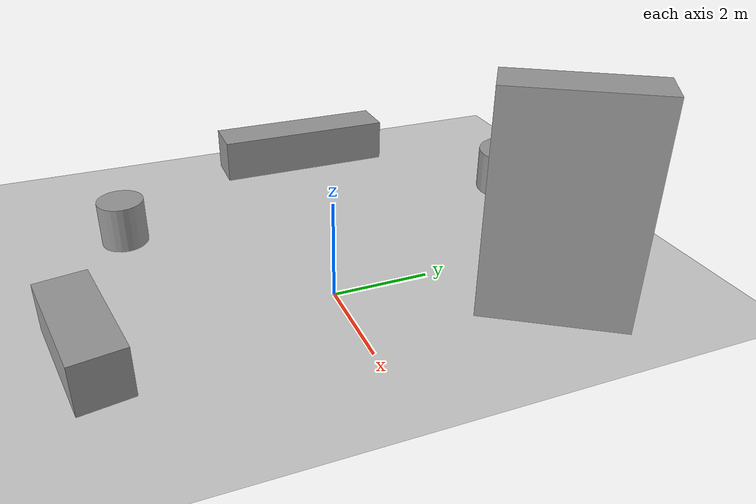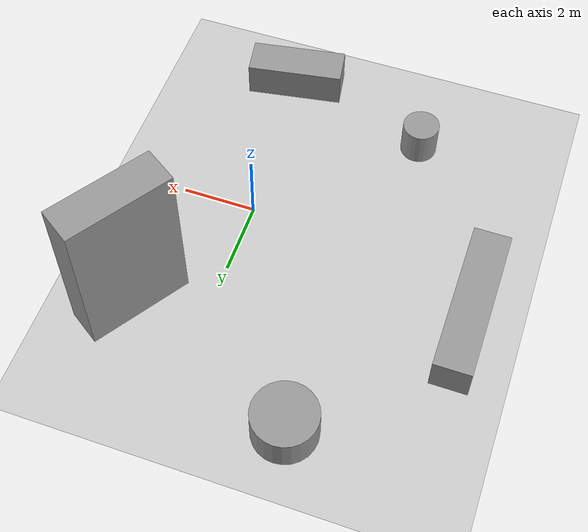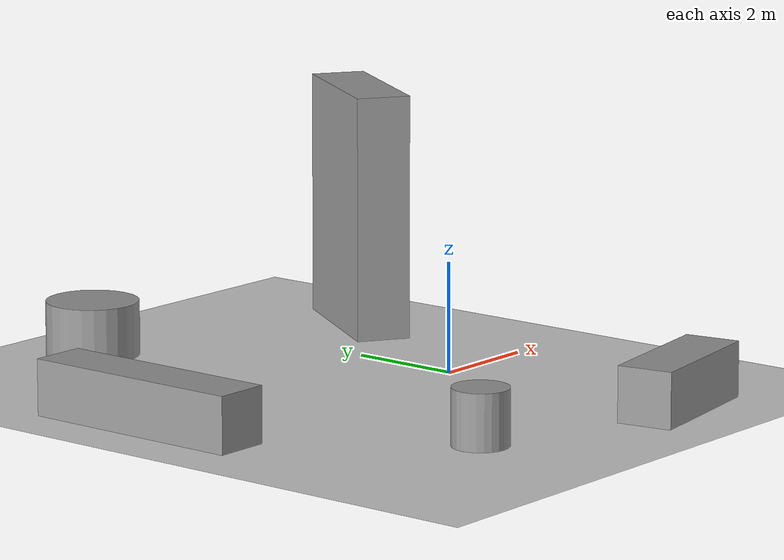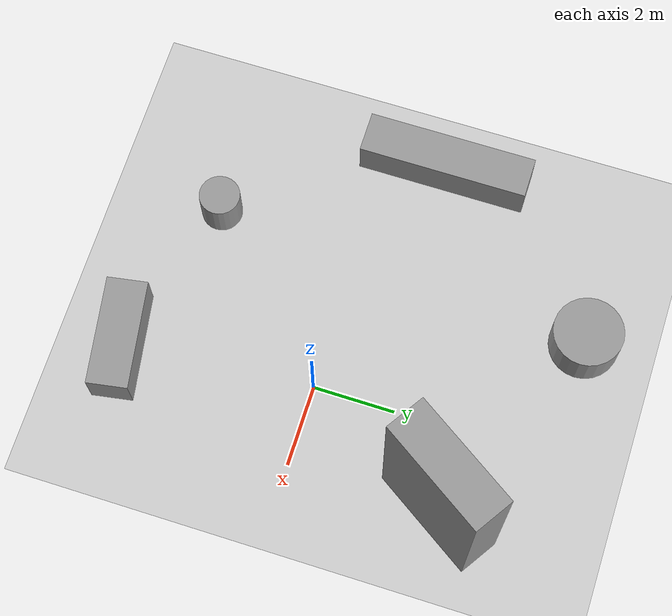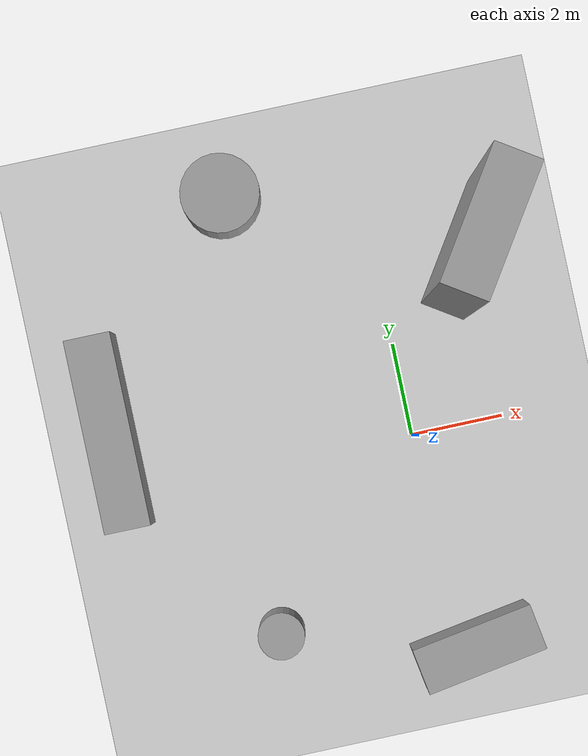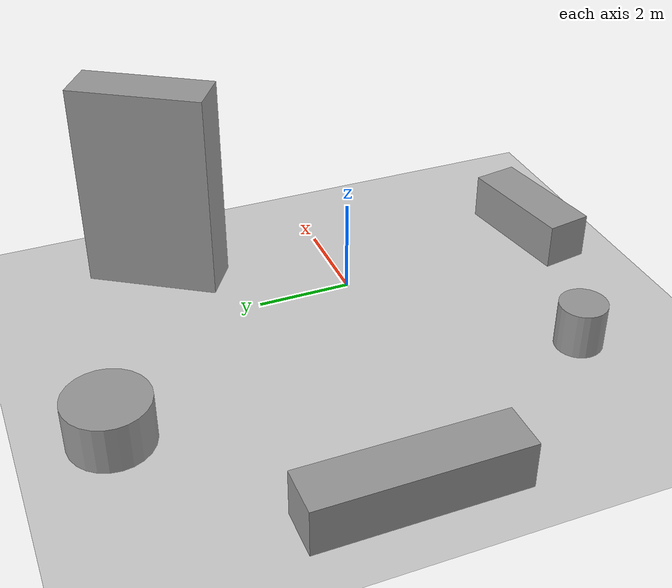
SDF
<sdf version="1.6">
 <world name="default">
  <light name="sun" type="directional">
   <pose>0 0 10 0 -0 0</pose>
   <diffuse>0.8 0.8 0.8 1</diffuse>
   <specular>0.1 0.1 0.1 1</specular>
   <attenuation>
    <range>1000</range>
    <constant>0.9</constant>
    <linear>0.01</linear>
    <quadratic>0.001</quadratic>
   </attenuation>
   <direction>-0.5 0.5 -1</direction>
  </light>
  <model name="ground_plane">
   <static>1</static>
   <link name="link">
    <collision name="collision">
     <geometry><plane><normal>0 0 1</normal><size>100 100</size></plane></geometry>
     <surface><friction><ode><mu>100</mu><mu2>50</mu2></ode></friction></surface>
    </collision>
    <visual name="visual">
     <cast_shadows>0</cast_shadows>
     <geometry><plane><normal>0 0 1</normal><size>100 100</size></plane></geometry>
     <material>
      <script><uri>file://media/materials/scripts/gazebo.material</uri><name>Gazebo/Grey</name></script>
     </material>
    </visual>
   </link>
  </model>
  <gravity>0 0 -9.8</gravity>
  <magnetic_field>6e-06 2.3e-05 -4.2e-05</magnetic_field>
  <atmosphere type="adiabatic"/>
  <physics name="default_physics" default="0" type="ode">
   <max_step_size>0.001</max_step_size>
   <real_time_factor>1</real_time_factor>
   <real_time_update_rate>1000</real_time_update_rate>
  </physics>
  <scene><ambient>0.4 0.4 0.4 1</ambient><background>0.7 0.7 0.7 1</background><shadows>1</shadows></scene>
  <spherical_coordinates>
   <surface_model>EARTH_WGS84</surface_model>
   <latitude_deg>0</latitude_deg>
   <longitude_deg>0</longitude_deg>
   <elevation>0</elevation>
   <heading_deg>0</heading_deg>
  </spherical_coordinates>
  <model name="unit_box_0">
   <pose>0.378347 -4.71471 0.5 0 -0 0.163847</pose>
   <link name="link">
    <inertial>
     <mass>1</mass>
     <inertia>
      <ixx>0.166667</ixx>
      <ixy>0</ixy>
      <ixz>0</ixz>
      <iyy>0.166667</iyy>
      <iyz>0</iyz>
      <izz>0.166667</izz>
     </inertia>
    </inertial>
    <collision name="collision"><geometry><box><size>2.65671 1 1</size></box></geometry></collision>
    <visual name="visual">
     <geometry><box><size>2.65671 1 1</size></box></geometry>
     <material>
      <script><name>Gazebo/Grey</name><uri>file://media/materials/scripts/gazebo.material</uri></script>
     </material>
    </visual>
   </link>
  </model>
  <model name="unit_cylinder_0">
   <pose>-2.96777 5.85466 0.499995 6e-06 -5e-06 0</pose>
   <link name="link">
    <inertial>
     <mass>1</mass>
     <inertia><ixx>0.145833</ixx><ixy>0</ixy><ixz>0</ixz><iyy>0.145833</iyy><iyz>0</iyz><izz>0.125</izz></inertia>
    </inertial>
    <collision name="collision">
     <geometry><cylinder><radius>0.8474</radius><length>1</length></cylinder></geometry>
    </collision>
    <visual name="visual">
     <geometry><cylinder><radius>0.8474</radius><length>1</length></cylinder></geometry>
     <material>
      <script><name>Gazebo/Grey</name><uri>file://media/materials/scripts/gazebo.material</uri></script>
     </material>
    </visual>
   </link>
  </model>
  <model name="unit_cylinder_1">
   <pose>-3.65369 -3.56471 0.499991 0 -0 0</pose>
   <link name="link">
    <inertial>
     <mass>1</mass>
     <inertia><ixx>0.145833</ixx><ixy>0</ixy><ixz>0</ixz><iyy>0.145833</iyy><iyz>0</iyz><izz>0.125</izz></inertia>
    </inertial>
    <collision name="collision">
     <geometry><cylinder><radius>0.5</radius><length>1</length></cylinder></geometry>
    </collision>
    <visual name="visual">
     <geometry><cylinder><radius>0.5</radius><length>1</length></cylinder></geometry>
     <material>
      <script><name>Gazebo/Grey</name><uri>file://media/materials/scripts/gazebo.material</uri></script>
     </material>
    </visual>
   </link>
  </model>
  <model name="unit_box_1">
   <pose>1.98542 3.6755 2.25866 1e-06 0 -0.578638</pose>
   <link name="link">
    <inertial>
     <mass>1</mass>
     <inertia>
      <ixx>0.166667</ixx>
      <ixy>0</ixy>
      <ixz>0</ixz>
      <iyy>0.166667</iyy>
      <iyz>0</iyz>
      <izz>0.166667</izz>
     </inertia>
    </inertial>
    <collision name="collision"><geometry><box><size>1 2.85256 4.51731</size></box></geometry></collision>
    <visual name="visual">
     <geometry><box><size>1 2.85256 4.51731</size></box></geometry>
     <material>
      <script><name>Gazebo/Grey</name><uri>file://media/materials/scripts/gazebo.material</uri></script>
     </material>
    </visual>
   </link>
  </model>
  <model name="unit_box_2">
   <pose>-6.35476 1.39777 0.499075 -0.000442 0 0</pose>
   <link name="link">
    <inertial>
     <mass>1</mass>
     <inertia>
      <ixx>0.166667</ixx>
      <ixy>0</ixy>
      <ixz>0</ixz>
      <iyy>0.166667</iyy>
      <iyz>0</iyz>
      <izz>0.166667</izz>
     </inertia>
    </inertial>
    <collision name="collision"><geometry><box><size>1 4.18298 1</size></box></geometry></collision>
    <visual name="visual">
     <geometry><box><size>1 4.18298 1</size></box></geometry>
     <material>
      <script><name>Gazebo/Grey</name><uri>file://media/materials/scripts/gazebo.material</uri></script>
     </material>
    </visual>
   </link>
  </model>
 </world>
</sdf>
